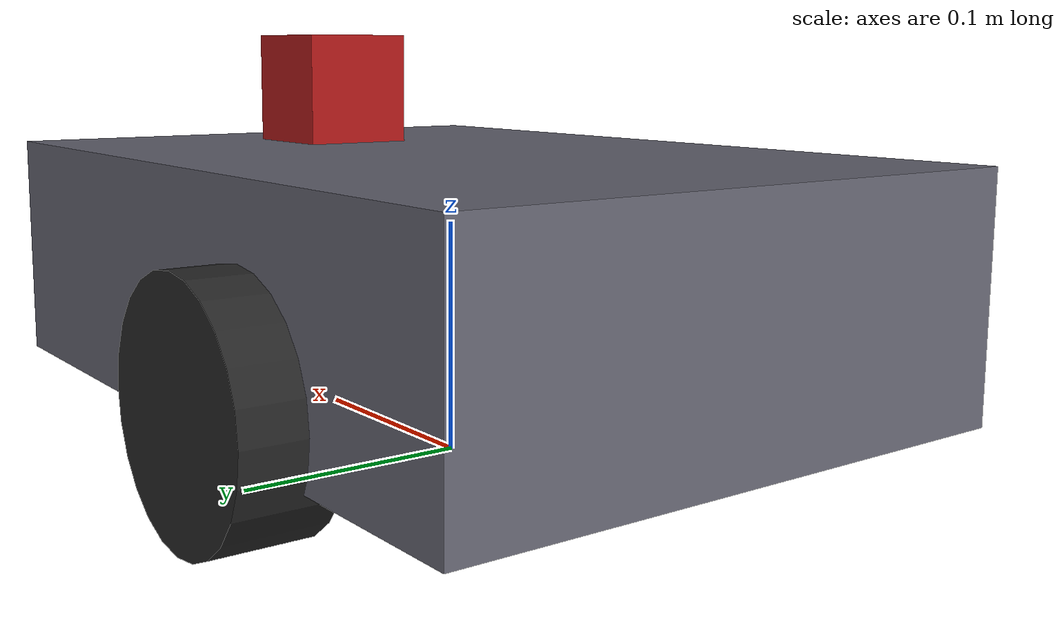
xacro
<?xml version="1.0"?>
<robot xmlns:xacro="http://www.ros.org/wiki/xacro" name="harness_bot">

  <xacro:property name="chassis_x" value="0.35"/>
  <xacro:property name="chassis_y" value="0.25"/>
  <xacro:property name="chassis_z" value="0.10"/>
  <xacro:property name="chassis_m" value="5.0"/>
  <xacro:property name="wheel_r"   value="0.05"/>
  <xacro:property name="wheel_w"   value="0.04"/>
  <xacro:property name="wheel_m"   value="0.5"/>
  <xacro:property name="wheel_sep" value="0.26"/>
  <xacro:property name="caster_r"  value="0.03"/>
  <xacro:property name="caster_m"  value="0.2"/>

  <material name="grey"><color rgba="0.4 0.4 0.45 1"/></material>
  <material name="dark"><color rgba="0.15 0.15 0.15 1"/></material>
  <material name="red"><color rgba="0.7 0.1 0.1 1"/></material>

  <xacro:macro name="box_inertia" params="m x y z">
    <inertial>
      <mass value="${m}"/>
      <inertia ixx="${m*(y*y+z*z)/12}" ixy="0" ixz="0"
               iyy="${m*(x*x+z*z)/12}" iyz="0"
               izz="${m*(x*x+y*y)/12}"/>
    </inertial>
  </xacro:macro>

  <link name="base_footprint"/>

  <joint name="base_joint" type="fixed">
    <parent link="base_footprint"/><child link="base_link"/>
    <origin xyz="0 0 0.08"/>
  </joint>

  <link name="base_link">
    <visual>
      <geometry><box size="${chassis_x} ${chassis_y} ${chassis_z}"/></geometry>
      <material name="grey"/>
    </visual>
    <collision>
      <geometry><box size="${chassis_x} ${chassis_y} ${chassis_z}"/></geometry>
    </collision>
    <xacro:box_inertia m="${chassis_m}" x="${chassis_x}" y="${chassis_y}" z="${chassis_z}"/>
  </link>

  <xacro:macro name="wheel" params="prefix y_sign">
    <joint name="${prefix}_wheel_joint" type="continuous">
      <parent link="base_link"/><child link="${prefix}_wheel"/>
      <origin xyz="-0.05 ${y_sign*wheel_sep/2} -0.03" rpy="-1.5708 0 0"/>
      <axis xyz="0 0 1"/>
    </joint>
    <link name="${prefix}_wheel">
      <visual>
        <geometry><cylinder radius="${wheel_r}" length="${wheel_w}"/></geometry>
        <material name="dark"/>
      </visual>
      <collision>
        <geometry><cylinder radius="${wheel_r}" length="${wheel_w}"/></geometry>
      </collision>
      <inertial>
        <mass value="${wheel_m}"/>
        <inertia ixx="${wheel_m*(3*wheel_r*wheel_r + wheel_w*wheel_w)/12}" ixy="0" ixz="0"
                 iyy="${wheel_m*(3*wheel_r*wheel_r + wheel_w*wheel_w)/12}" iyz="0"
                 izz="${wheel_m*wheel_r*wheel_r/2}"/>
      </inertial>
    </link>
  </xacro:macro>

  <xacro:wheel prefix="left"  y_sign="1"/>
  <xacro:wheel prefix="right" y_sign="-1"/>

  <joint name="caster_joint" type="fixed">
    <parent link="base_link"/><child link="caster"/>
    <origin xyz="0.13 0 -0.05"/>
  </joint>

  <link name="caster">
    <visual>
      <geometry><sphere radius="${caster_r}"/></geometry>
      <material name="dark"/>
    </visual>
    <collision><geometry><sphere radius="${caster_r}"/></geometry></collision>
    <inertial>
      <mass value="${caster_m}"/>
      <inertia ixx="${2*caster_m*caster_r*caster_r/5}" ixy="0" ixz="0"
               iyy="${2*caster_m*caster_r*caster_r/5}" iyz="0"
               izz="${2*caster_m*caster_r*caster_r/5}"/>
    </inertial>
  </link>

  <joint name="lidar_joint" type="fixed">
    <parent link="base_link"/><child link="lidar_link"/>
    <origin xyz="0.10 0 0.075"/>
  </joint>

  <link name="lidar_link">
    <visual>
      <geometry><box size="0.05 0.05 0.05"/></geometry>
      <material name="red"/>
    </visual>
    <collision><geometry><box size="0.05 0.05 0.05"/></geometry></collision>
    <xacro:box_inertia m="0.15" x="0.05" y="0.05" z="0.05"/>
  </link>

  <gazebo reference="left_wheel">
    <mu1>1.0</mu1><mu2>1.0</mu2><kp>1000000.0</kp><kd>100.0</kd>
  </gazebo>
  <gazebo reference="right_wheel">
    <mu1>1.0</mu1><mu2>1.0</mu2><kp>1000000.0</kp><kd>100.0</kd>
  </gazebo>
  <gazebo reference="caster">
    <mu1>0.001</mu1><mu2>0.001</mu2><kp>1000000.0</kp><kd>100.0</kd>
  </gazebo>

  <gazebo reference="lidar_link">
    <sensor name="lidar" type="gpu_lidar">
      <topic>scan</topic>
      <gz_frame_id>lidar_link</gz_frame_id>
      <update_rate>5</update_rate>
      <always_on>true</always_on>
      <lidar>
        <scan>
          <horizontal>
            <samples>180</samples>
            <resolution>1</resolution>
            <min_angle>-3.14159</min_angle>
            <max_angle>3.14159</max_angle>
          </horizontal>
        </scan>
        <range><min>0.12</min><max>10.0</max><resolution>0.01</resolution></range>
      </lidar>
    </sensor>
  </gazebo>

  <gazebo>
    <plugin filename="gz-sim-odometry-publisher-system"
            name="gz::sim::systems::OdometryPublisher">
      <odom_frame>map</odom_frame>
      <robot_base_frame>base_footprint</robot_base_frame>
      <odom_topic>ground_truth</odom_topic>
      <odom_publish_frequency>10</odom_publish_frequency>
    </plugin>
    <plugin filename="gz-sim-diff-drive-system"
            name="gz::sim::systems::DiffDrive">
      <left_joint>left_wheel_joint</left_joint>
      <right_joint>right_wheel_joint</right_joint>
      <wheel_separation>${wheel_sep}</wheel_separation>
      <wheel_radius>${wheel_r}</wheel_radius>
      <odom_publish_frequency>30</odom_publish_frequency>
      <topic>cmd_vel</topic>
      <odom_topic>odom</odom_topic>
      <tf_topic>tf</tf_topic>
      <frame_id>odom</frame_id>
      <child_frame_id>base_footprint</child_frame_id>
      <max_linear_acceleration>1.0</max_linear_acceleration>
    </plugin>

    <plugin filename="gz-sim-joint-state-publisher-system"
            name="gz::sim::systems::JointStatePublisher">
      <topic>joint_states</topic>
    </plugin>
  </gazebo>

</robot>
